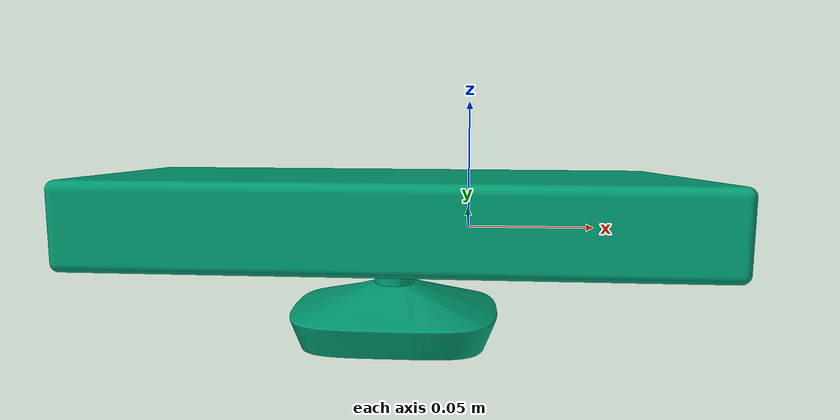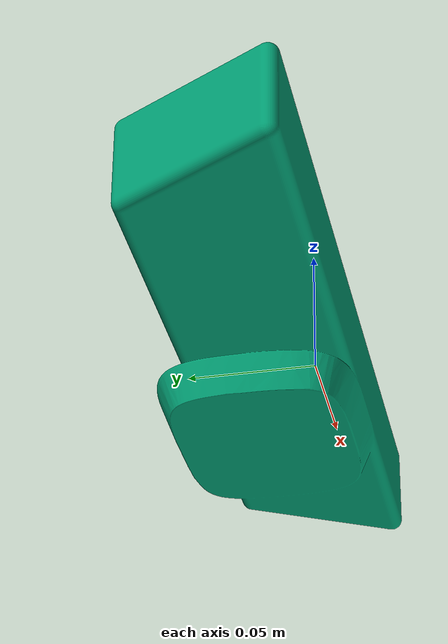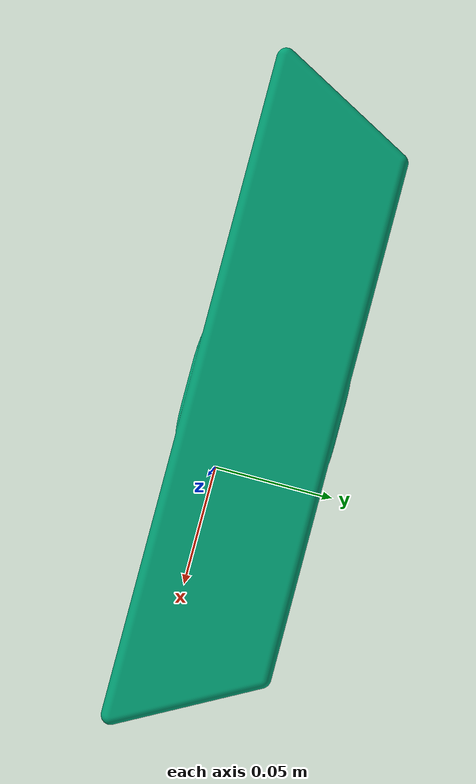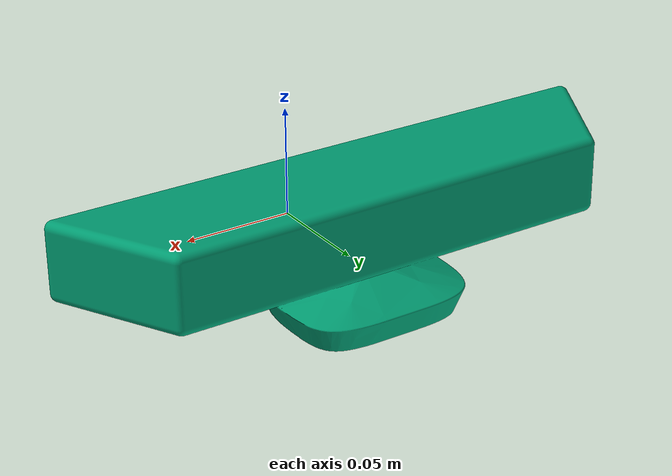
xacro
<?xml version="1.0"?>
<robot name="sensor_kinect" xmlns:xacro="http://ros.org/wiki/xacro">
  <xacro:include filename="$(find costar_objects)/urdf/turtlebot_properties.urdf.xacro"/>
  <xacro:include filename="$(find costar_objects)/urdf/turtlebot_gazebo.urdf.xacro"/>

  <xacro:property name="kinect_cam_py" value="-0.0125"/>
  <!-- Parameterised in part by the values in turtlebot_properties.urdf.xacro -->
    <link name="camera_rgb_frame"/>

    <joint name="camera_rgb_optical_joint" type="fixed">
      <origin xyz="0 0 0" rpy="${-M_PI/2} 0 ${-M_PI/2}" />
      <parent link="camera_rgb_frame" />
      <child link="camera_rgb_optical_frame" />
    </joint>
    <link name="camera_rgb_optical_frame"/>

    <joint name="camera_joint" type="fixed">
      <origin xyz="-0.031 ${-kinect_cam_py} -0.016" rpy="0 0 0"/>
      <parent link="camera_rgb_frame"/>
      <child link="camera_link"/>
    </joint>
      <link name="camera_link">
      <visual>
       <origin xyz="0 0 0" rpy="0 0 0"/>
        <geometry>
         <mesh filename="package://costar_objects/sdf/kinect/kinect.dae"/>
        </geometry>
      </visual>
  	  <collision>
        <origin xyz="0.0 0.0 0.0" rpy="0 0 0"/>
  	    <geometry>
  	      <box size="0.07271 0.27794 0.073"/>
  	    </geometry>
  	  </collision>
      <inertial>
        <mass value="0.564" />
        <origin xyz="0 0 0" />
        <inertia ixx="0.003881243" ixy="0.0" ixz="0.0"
                 iyy="0.000498940" iyz="0.0"
                 izz="0.003879257" />
      </inertial>
      </link>

	<joint name="camera_depth_joint" type="fixed">
	  <origin xyz="0 ${2 * -kinect_cam_py} 0" rpy="0 0 0" />
	  <parent link="camera_rgb_frame" />
	  <child link="camera_depth_frame" />
	</joint>
	<link name="camera_depth_frame"/>

	<joint name="camera_depth_optical_joint" type="fixed">
	  <origin xyz="0 0 0" rpy="${-M_PI/2} 0 ${-M_PI/2}" />
	  <parent link="camera_depth_frame" />
	  <child link="camera_depth_optical_frame" />
	</joint>
	<link name="camera_depth_optical_frame">
    <visual>
       <origin xyz="0 0 0" rpy="0 0 0"/>
        <geometry>
          <box size=".01 .01 .01" />
        </geometry>
      </visual>
  </link>

  <gazebo reference="camera_rgb_frame">
    <gravity>0</gravity>
  </gazebo>

	<!-- Kinect sensor for simulation -->
	<turtlebot_sim_3dsensor/>
</robot>

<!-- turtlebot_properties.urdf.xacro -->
<robot xmlns:xacro="http://ros.org/wiki/xacro">
  <!--
    These properties must be observed by any machine
    that wants to be defined as a turtlebot. Refer
    to the REP for more details.

    http://www.ros.org/reps/rep-0119.html
   -->

  <xacro:property name="M_PI" value="3.14159265359"/>
  <xacro:property name="cam_px" value="-0.087" />
  <xacro:property name="cam_pz" value="0.2870" />
	<xacro:property name="cam_or" value="0" />
	<xacro:property name="cam_op" value="0" />
	<xacro:property name="cam_oy" value="0" />
</robot>
